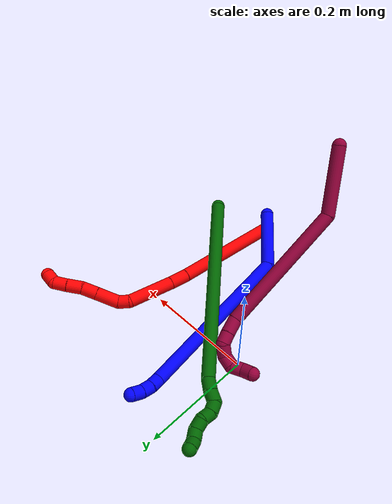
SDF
<sdf version="1.7">
 <world name="default">
  <model name="1">
   <static>0</static>
   <link name="1">
    <collision name="collision-cylinder-e_1_1_4">
     <pose>-0.002907 -0.000421 -0.056557 3.13416 -0.051359 -2.85405</pose>
     <geometry><cylinder><radius>0.0125</radius><length>0.113266</length></cylinder></geometry>
     <surface>
      <friction><ode><mu>1.16</mu><mu2>1.16</mu2><slip1>0</slip1><slip2>0</slip2></ode></friction>
      <contact><ode><kp>1e+06</kp><kd>1</kd><max_vel>0</max_vel><min_depth>0.001</min_depth></ode></contact>
     </surface>
    </collision>
    <visual name="visual-cylinder-e_1_1_4">
     <pose>-0.002907 -0.000421 -0.056557 3.13416 -0.051359 -2.85405</pose>
     <geometry><cylinder><radius>0.0125</radius><length>0.113266</length></cylinder></geometry>
     <material><ambient>0 0 1 1</ambient></material>
    </visual>
    <collision name="collision-cylinder-e_2_4_5">
     <pose>-0.005925 0.103112 -0.238619 -2.44985 -0.000676 0.001877</pose>
     <geometry><cylinder><radius>0.0125</radius><length>0.325933</length></cylinder></geometry>
     <surface>
      <friction><ode><mu>1.16</mu><mu2>1.16</mu2><slip1>0</slip1><slip2>0</slip2></ode></friction>
      <contact><ode><kp>1e+06</kp><kd>1</kd><max_vel>0</max_vel><min_depth>0.001</min_depth></ode></contact>
     </surface>
    </collision>
    <visual name="visual-cylinder-e_2_4_5">
     <pose>-0.005925 0.103112 -0.238619 -2.44985 -0.000676 0.001877</pose>
     <geometry><cylinder><radius>0.0125</radius><length>0.325933</length></cylinder></geometry>
     <material><ambient>0 0 1 1</ambient></material>
    </visual>
    <collision name="collision-cylinder-e_3_5_6">
     <pose>-0.007455 0.213948 -0.371365 -2.38153 -0.141163 0.350352</pose>
     <geometry><cylinder><radius>0.0125</radius><length>0.020178</length></cylinder></geometry>
     <surface>
      <friction><ode><mu>1.16</mu><mu2>1.16</mu2><slip1>0</slip1><slip2>0</slip2></ode></friction>
      <contact><ode><kp>1e+06</kp><kd>1</kd><max_vel>0</max_vel><min_depth>0.001</min_depth></ode></contact>
     </surface>
    </collision>
    <visual name="visual-cylinder-e_3_5_6">
     <pose>-0.007455 0.213948 -0.371365 -2.38153 -0.141163 0.350352</pose>
     <geometry><cylinder><radius>0.0125</radius><length>0.020178</length></cylinder></geometry>
     <material><ambient>0 0 1 1</ambient></material>
    </visual>
    <collision name="collision-cylinder-e_4_6_7">
     <pose>-0.010122 0.229074 -0.384244 -2.17075 -0.124343 0.23493</pose>
     <geometry><cylinder><radius>0.0125</radius><length>0.020132</length></cylinder></geometry>
     <surface>
      <friction><ode><mu>1.16</mu><mu2>1.16</mu2><slip1>0</slip1><slip2>0</slip2></ode></friction>
      <contact><ode><kp>1e+06</kp><kd>1</kd><max_vel>0</max_vel><min_depth>0.001</min_depth></ode></contact>
     </surface>
    </collision>
    <visual name="visual-cylinder-e_4_6_7">
     <pose>-0.010122 0.229074 -0.384244 -2.17075 -0.124343 0.23493</pose>
     <geometry><cylinder><radius>0.0125</radius><length>0.020132</length></cylinder></geometry>
     <material><ambient>0 0 1 1</ambient></material>
    </visual>
    <collision name="collision-cylinder-e_5_7_2">
     <pose>-0.013167 0.246671 -0.39366 -1.95458 -0.176178 0.260338</pose>
     <geometry><cylinder><radius>0.0125</radius><length>0.020491</length></cylinder></geometry>
     <surface>
      <friction><ode><mu>1.16</mu><mu2>1.16</mu2><slip1>0</slip1><slip2>0</slip2></ode></friction>
      <contact><ode><kp>1e+06</kp><kd>1</kd><max_vel>0</max_vel><min_depth>0.001</min_depth></ode></contact>
     </surface>
    </collision>
    <visual name="visual-cylinder-e_5_7_2">
     <pose>-0.013167 0.246671 -0.39366 -1.95458 -0.176178 0.260338</pose>
     <geometry><cylinder><radius>0.0125</radius><length>0.020491</length></cylinder></geometry>
     <material><ambient>0 0 1 1</ambient></material>
    </visual>
    <collision name="collision-sphere-2">
     <pose>-0.014962 0.256024 -0.397437 0 -0 0</pose>
     <geometry><sphere><radius>0.0125</radius></sphere></geometry>
     <surface>
      <friction><ode><mu>1.16</mu><mu2>1.16</mu2><slip1>0</slip1><slip2>0</slip2></ode></friction>
      <contact><ode><kp>1e+06</kp><kd>1</kd><max_vel>0</max_vel><min_depth>0.001</min_depth></ode></contact>
     </surface>
    </collision>
    <visual name="visual-sphere-2">
     <pose>-0.014962 0.256024 -0.397437 0 -0 0</pose>
     <geometry><sphere><radius>0.0125</radius></sphere></geometry>
     <material><ambient>0 0 1 1</ambient></material>
    </visual>
    <collision name="collision-sphere-7">
     <pose>-0.011371 0.237318 -0.389884 0 -0 0</pose>
     <geometry><sphere><radius>0.0125</radius></sphere></geometry>
     <surface>
      <friction><ode><mu>1.16</mu><mu2>1.16</mu2><slip1>0</slip1><slip2>0</slip2></ode></friction>
      <contact><ode><kp>1e+06</kp><kd>1</kd><max_vel>0</max_vel><min_depth>0.001</min_depth></ode></contact>
     </surface>
    </collision>
    <visual name="visual-sphere-7">
     <pose>-0.011371 0.237318 -0.389884 0 -0 0</pose>
     <geometry><sphere><radius>0.0125</radius></sphere></geometry>
     <material><ambient>0 0 1 1</ambient></material>
    </visual>
    <collision name="collision-sphere-6">
     <pose>-0.008874 0.22083 -0.378605 0 -0 0</pose>
     <geometry><sphere><radius>0.0125</radius></sphere></geometry>
     <surface>
      <friction><ode><mu>1.16</mu><mu2>1.16</mu2><slip1>0</slip1><slip2>0</slip2></ode></friction>
      <contact><ode><kp>1e+06</kp><kd>1</kd><max_vel>0</max_vel><min_depth>0.001</min_depth></ode></contact>
     </surface>
    </collision>
    <visual name="visual-sphere-6">
     <pose>-0.008874 0.22083 -0.378605 0 -0 0</pose>
     <geometry><sphere><radius>0.0125</radius></sphere></geometry>
     <material><ambient>0 0 1 1</ambient></material>
    </visual>
    <collision name="collision-sphere-5">
     <pose>-0.006035 0.207066 -0.364125 0 -0 0</pose>
     <geometry><sphere><radius>0.0125</radius></sphere></geometry>
     <surface>
      <friction><ode><mu>1.16</mu><mu2>1.16</mu2><slip1>0</slip1><slip2>0</slip2></ode></friction>
      <contact><ode><kp>1e+06</kp><kd>1</kd><max_vel>0</max_vel><min_depth>0.001</min_depth></ode></contact>
     </surface>
    </collision>
    <visual name="visual-sphere-5">
     <pose>-0.006035 0.207066 -0.364125 0 -0 0</pose>
     <geometry><sphere><radius>0.0125</radius></sphere></geometry>
     <material><ambient>0 0 1 1</ambient></material>
    </visual>
    <collision name="collision-sphere-1">
     <geometry><sphere><radius>0.0125</radius></sphere></geometry>
     <surface>
      <friction><ode><mu>1.16</mu><mu2>1.16</mu2><slip1>0</slip1><slip2>0</slip2></ode></friction>
      <contact><ode><kp>1e+06</kp><kd>1</kd><max_vel>0</max_vel><min_depth>0.001</min_depth></ode></contact>
     </surface>
    </collision>
    <visual name="visual-sphere-1">
     <geometry><sphere><radius>0.0125</radius></sphere></geometry>
     <material><ambient>0 0 1 1</ambient></material>
    </visual>
    <collision name="collision-sphere-4">
     <pose>-0.005815 -0.000841 -0.113113 0 -0 0</pose>
     <geometry><sphere><radius>0.0125</radius></sphere></geometry>
     <surface>
      <friction><ode><mu>1.16</mu><mu2>1.16</mu2><slip1>0</slip1><slip2>0</slip2></ode></friction>
      <contact><ode><kp>1e+06</kp><kd>1</kd><max_vel>0</max_vel><min_depth>0.001</min_depth></ode></contact>
     </surface>
    </collision>
    <visual name="visual-sphere-4">
     <pose>-0.005815 -0.000841 -0.113113 0 -0 0</pose>
     <geometry><sphere><radius>0.0125</radius></sphere></geometry>
     <material><ambient>0 0 1 1</ambient></material>
    </visual>
    <inertial>
     <pose>-0.005769 0.095087 -0.214951 0 -0 0</pose>
     <mass>0.5</mass>
     <inertia>
      <ixx>0.002752</ixx>
      <ixy>0</ixy>
      <ixz>0</ixz>
      <iyy>-0.002123</iyy>
      <iyz>0</iyz>
      <izz>-0.001873</izz>
     </inertia>
    </inertial>
   </link>
   <pose>0.182664 -0.27986 0.042795 0.877884 1.04889 0.107894</pose>
  </model>
  <model name="2">
   <static>0</static>
   <link name="2">
    <collision name="collision-cylinder-e_1_1_4">
     <pose>0.028957 0.095542 0.029969 -1.26684 0.281508 -0.20736</pose>
     <geometry><cylinder><radius>0.0125</radius><length>0.20847</length></cylinder></geometry>
     <surface>
      <friction><ode><mu>1.16</mu><mu2>1.16</mu2><slip1>0</slip1><slip2>0</slip2></ode></friction>
      <contact><ode><kp>1e+06</kp><kd>1</kd><max_vel>0</max_vel><min_depth>0.001</min_depth></ode></contact>
     </surface>
    </collision>
    <visual name="visual-cylinder-e_1_1_4">
     <pose>0.028957 0.095542 0.029969 -1.26684 0.281508 -0.20736</pose>
     <geometry><cylinder><radius>0.0125</radius><length>0.20847</length></cylinder></geometry>
     <material><ambient>1 0 0 1</ambient></material>
    </visual>
    <collision name="collision-cylinder-e_2_4_5">
     <pose>0.061309 0.207305 0.064799 -1.27965 0.197874 -0.147487</pose>
     <geometry><cylinder><radius>0.0125</radius><length>0.034541</length></cylinder></geometry>
     <surface>
      <friction><ode><mu>1.16</mu><mu2>1.16</mu2><slip1>0</slip1><slip2>0</slip2></ode></friction>
      <contact><ode><kp>1e+06</kp><kd>1</kd><max_vel>0</max_vel><min_depth>0.001</min_depth></ode></contact>
     </surface>
    </collision>
    <visual name="visual-cylinder-e_2_4_5">
     <pose>0.061309 0.207305 0.064799 -1.27965 0.197874 -0.147487</pose>
     <geometry><cylinder><radius>0.0125</radius><length>0.034541</length></cylinder></geometry>
     <material><ambient>1 0 0 1</ambient></material>
    </visual>
    <collision name="collision-cylinder-e_3_5_6">
     <pose>0.072048 0.265115 0.081263 -1.29873 0.168467 -0.128029</pose>
     <geometry><cylinder><radius>0.0125</radius><length>0.087596</length></cylinder></geometry>
     <surface>
      <friction><ode><mu>1.16</mu><mu2>1.16</mu2><slip1>0</slip1><slip2>0</slip2></ode></friction>
      <contact><ode><kp>1e+06</kp><kd>1</kd><max_vel>0</max_vel><min_depth>0.001</min_depth></ode></contact>
     </surface>
    </collision>
    <visual name="visual-cylinder-e_3_5_6">
     <pose>0.072048 0.265115 0.081263 -1.29873 0.168467 -0.128029</pose>
     <geometry><cylinder><radius>0.0125</radius><length>0.087596</length></cylinder></geometry>
     <material><ambient>1 0 0 1</ambient></material>
    </visual>
    <collision name="collision-cylinder-e_4_6_7">
     <pose>0.075378 0.31647 0.095901 -1.26939 -0.373999 0.276861</pose>
     <geometry><cylinder><radius>0.0125</radius><length>0.021969</length></cylinder></geometry>
     <surface>
      <friction><ode><mu>1.16</mu><mu2>1.16</mu2><slip1>0</slip1><slip2>0</slip2></ode></friction>
      <contact><ode><kp>1e+06</kp><kd>1</kd><max_vel>0</max_vel><min_depth>0.001</min_depth></ode></contact>
     </surface>
    </collision>
    <visual name="visual-cylinder-e_4_6_7">
     <pose>0.075378 0.31647 0.095901 -1.26939 -0.373999 0.276861</pose>
     <geometry><cylinder><radius>0.0125</radius><length>0.021969</length></cylinder></geometry>
     <material><ambient>1 0 0 1</ambient></material>
    </visual>
    <collision name="collision-cylinder-e_5_7_8">
     <pose>0.060769 0.345094 0.094664 -1.79362 -0.501278 0.620354</pose>
     <geometry><cylinder><radius>0.0125</radius><length>0.044102</length></cylinder></geometry>
     <surface>
      <friction><ode><mu>1.16</mu><mu2>1.16</mu2><slip1>0</slip1><slip2>0</slip2></ode></friction>
      <contact><ode><kp>1e+06</kp><kd>1</kd><max_vel>0</max_vel><min_depth>0.001</min_depth></ode></contact>
     </surface>
    </collision>
    <visual name="visual-cylinder-e_5_7_8">
     <pose>0.060769 0.345094 0.094664 -1.79362 -0.501278 0.620354</pose>
     <geometry><cylinder><radius>0.0125</radius><length>0.044102</length></cylinder></geometry>
     <material><ambient>1 0 0 1</ambient></material>
    </visual>
    <collision name="collision-cylinder-e_6_8_9">
     <pose>0.043485 0.376057 0.087766 -1.78432 -0.495068 0.607382</pose>
     <geometry><cylinder><radius>0.0125</radius><length>0.02815</length></cylinder></geometry>
     <surface>
      <friction><ode><mu>1.16</mu><mu2>1.16</mu2><slip1>0</slip1><slip2>0</slip2></ode></friction>
      <contact><ode><kp>1e+06</kp><kd>1</kd><max_vel>0</max_vel><min_depth>0.001</min_depth></ode></contact>
     </surface>
    </collision>
    <visual name="visual-cylinder-e_6_8_9">
     <pose>0.043485 0.376057 0.087766 -1.78432 -0.495068 0.607382</pose>
     <geometry><cylinder><radius>0.0125</radius><length>0.02815</length></cylinder></geometry>
     <material><ambient>1 0 0 1</ambient></material>
    </visual>
    <collision name="collision-cylinder-e_7_9_10">
     <pose>0.030937 0.401162 0.085182 -1.5677 -0.42361 0.422341</pose>
     <geometry><cylinder><radius>0.0125</radius><length>0.028522</length></cylinder></geometry>
     <surface>
      <friction><ode><mu>1.16</mu><mu2>1.16</mu2><slip1>0</slip1><slip2>0</slip2></ode></friction>
      <contact><ode><kp>1e+06</kp><kd>1</kd><max_vel>0</max_vel><min_depth>0.001</min_depth></ode></contact>
     </surface>
    </collision>
    <visual name="visual-cylinder-e_7_9_10">
     <pose>0.030937 0.401162 0.085182 -1.5677 -0.42361 0.422341</pose>
     <geometry><cylinder><radius>0.0125</radius><length>0.028522</length></cylinder></geometry>
     <material><ambient>1 0 0 1</ambient></material>
    </visual>
    <collision name="collision-cylinder-e_8_10_11">
     <pose>0.019263 0.424979 0.085133 -1.57902 -0.493018 0.496924</pose>
     <geometry><cylinder><radius>0.0125</radius><length>0.024559</length></cylinder></geometry>
     <surface>
      <friction><ode><mu>1.16</mu><mu2>1.16</mu2><slip1>0</slip1><slip2>0</slip2></ode></friction>
      <contact><ode><kp>1e+06</kp><kd>1</kd><max_vel>0</max_vel><min_depth>0.001</min_depth></ode></contact>
     </surface>
    </collision>
    <visual name="visual-cylinder-e_8_10_11">
     <pose>0.019263 0.424979 0.085133 -1.57902 -0.493018 0.496924</pose>
     <geometry><cylinder><radius>0.0125</radius><length>0.024559</length></cylinder></geometry>
     <material><ambient>1 0 0 1</ambient></material>
    </visual>
    <collision name="collision-cylinder-e_9_11_2">
     <pose>0.003183 0.439591 0.083568 -1.94165 -1.19321 1.56357</pose>
     <geometry><cylinder><radius>0.0125</radius><length>0.022091</length></cylinder></geometry>
     <surface>
      <friction><ode><mu>1.16</mu><mu2>1.16</mu2><slip1>0</slip1><slip2>0</slip2></ode></friction>
      <contact><ode><kp>1e+06</kp><kd>1</kd><max_vel>0</max_vel><min_depth>0.001</min_depth></ode></contact>
     </surface>
    </collision>
    <visual name="visual-cylinder-e_9_11_2">
     <pose>0.003183 0.439591 0.083568 -1.94165 -1.19321 1.56357</pose>
     <geometry><cylinder><radius>0.0125</radius><length>0.022091</length></cylinder></geometry>
     <material><ambient>1 0 0 1</ambient></material>
    </visual>
    <collision name="collision-sphere-2">
     <pose>-0.007084 0.443386 0.082092 0 -0 0</pose>
     <geometry><sphere><radius>0.0125</radius></sphere></geometry>
     <surface>
      <friction><ode><mu>1.16</mu><mu2>1.16</mu2><slip1>0</slip1><slip2>0</slip2></ode></friction>
      <contact><ode><kp>1e+06</kp><kd>1</kd><max_vel>0</max_vel><min_depth>0.001</min_depth></ode></contact>
     </surface>
    </collision>
    <visual name="visual-sphere-2">
     <pose>-0.007084 0.443386 0.082092 0 -0 0</pose>
     <geometry><sphere><radius>0.0125</radius></sphere></geometry>
     <material><ambient>1 0 0 1</ambient></material>
    </visual>
    <collision name="collision-sphere-11">
     <pose>0.013451 0.435796 0.085044 0 -0 0</pose>
     <geometry><sphere><radius>0.0125</radius></sphere></geometry>
     <surface>
      <friction><ode><mu>1.16</mu><mu2>1.16</mu2><slip1>0</slip1><slip2>0</slip2></ode></friction>
      <contact><ode><kp>1e+06</kp><kd>1</kd><max_vel>0</max_vel><min_depth>0.001</min_depth></ode></contact>
     </surface>
    </collision>
    <visual name="visual-sphere-11">
     <pose>0.013451 0.435796 0.085044 0 -0 0</pose>
     <geometry><sphere><radius>0.0125</radius></sphere></geometry>
     <material><ambient>1 0 0 1</ambient></material>
    </visual>
    <collision name="collision-sphere-10">
     <pose>0.025074 0.414162 0.085222 0 -0 0</pose>
     <geometry><sphere><radius>0.0125</radius></sphere></geometry>
     <surface>
      <friction><ode><mu>1.16</mu><mu2>1.16</mu2><slip1>0</slip1><slip2>0</slip2></ode></friction>
      <contact><ode><kp>1e+06</kp><kd>1</kd><max_vel>0</max_vel><min_depth>0.001</min_depth></ode></contact>
     </surface>
    </collision>
    <visual name="visual-sphere-10">
     <pose>0.025074 0.414162 0.085222 0 -0 0</pose>
     <geometry><sphere><radius>0.0125</radius></sphere></geometry>
     <material><ambient>1 0 0 1</ambient></material>
    </visual>
    <collision name="collision-sphere-9">
     <pose>0.036799 0.388161 0.085141 0 -0 0</pose>
     <geometry><sphere><radius>0.0125</radius></sphere></geometry>
     <surface>
      <friction><ode><mu>1.16</mu><mu2>1.16</mu2><slip1>0</slip1><slip2>0</slip2></ode></friction>
      <contact><ode><kp>1e+06</kp><kd>1</kd><max_vel>0</max_vel><min_depth>0.001</min_depth></ode></contact>
     </surface>
    </collision>
    <visual name="visual-sphere-9">
     <pose>0.036799 0.388161 0.085141 0 -0 0</pose>
     <geometry><sphere><radius>0.0125</radius></sphere></geometry>
     <material><ambient>1 0 0 1</ambient></material>
    </visual>
    <collision name="collision-sphere-4">
     <pose>0.057914 0.191084 0.059938 0 -0 0</pose>
     <geometry><sphere><radius>0.0125</radius></sphere></geometry>
     <surface>
      <friction><ode><mu>1.16</mu><mu2>1.16</mu2><slip1>0</slip1><slip2>0</slip2></ode></friction>
      <contact><ode><kp>1e+06</kp><kd>1</kd><max_vel>0</max_vel><min_depth>0.001</min_depth></ode></contact>
     </surface>
    </collision>
    <visual name="visual-sphere-4">
     <pose>0.057914 0.191084 0.059938 0 -0 0</pose>
     <geometry><sphere><radius>0.0125</radius></sphere></geometry>
     <material><ambient>1 0 0 1</ambient></material>
    </visual>
    <collision name="collision-sphere-1">
     <geometry><sphere><radius>0.0125</radius></sphere></geometry>
     <surface>
      <friction><ode><mu>1.16</mu><mu2>1.16</mu2><slip1>0</slip1><slip2>0</slip2></ode></friction>
      <contact><ode><kp>1e+06</kp><kd>1</kd><max_vel>0</max_vel><min_depth>0.001</min_depth></ode></contact>
     </surface>
    </collision>
    <visual name="visual-sphere-1">
     <geometry><sphere><radius>0.0125</radius></sphere></geometry>
     <material><ambient>1 0 0 1</ambient></material>
    </visual>
    <collision name="collision-sphere-8">
     <pose>0.050172 0.363954 0.09039 0 -0 0</pose>
     <geometry><sphere><radius>0.0125</radius></sphere></geometry>
     <surface>
      <friction><ode><mu>1.16</mu><mu2>1.16</mu2><slip1>0</slip1><slip2>0</slip2></ode></friction>
      <contact><ode><kp>1e+06</kp><kd>1</kd><max_vel>0</max_vel><min_depth>0.001</min_depth></ode></contact>
     </surface>
    </collision>
    <visual name="visual-sphere-8">
     <pose>0.050172 0.363954 0.09039 0 -0 0</pose>
     <geometry><sphere><radius>0.0125</radius></sphere></geometry>
     <material><ambient>1 0 0 1</ambient></material>
    </visual>
    <collision name="collision-sphere-5">
     <pose>0.064704 0.223525 0.06966 0 -0 0</pose>
     <geometry><sphere><radius>0.0125</radius></sphere></geometry>
     <surface>
      <friction><ode><mu>1.16</mu><mu2>1.16</mu2><slip1>0</slip1><slip2>0</slip2></ode></friction>
      <contact><ode><kp>1e+06</kp><kd>1</kd><max_vel>0</max_vel><min_depth>0.001</min_depth></ode></contact>
     </surface>
    </collision>
    <visual name="visual-sphere-5">
     <pose>0.064704 0.223525 0.06966 0 -0 0</pose>
     <geometry><sphere><radius>0.0125</radius></sphere></geometry>
     <material><ambient>1 0 0 1</ambient></material>
    </visual>
    <collision name="collision-sphere-6">
     <pose>0.079391 0.306705 0.092866 0 -0 0</pose>
     <geometry><sphere><radius>0.0125</radius></sphere></geometry>
     <surface>
      <friction><ode><mu>1.16</mu><mu2>1.16</mu2><slip1>0</slip1><slip2>0</slip2></ode></friction>
      <contact><ode><kp>1e+06</kp><kd>1</kd><max_vel>0</max_vel><min_depth>0.001</min_depth></ode></contact>
     </surface>
    </collision>
    <visual name="visual-sphere-6">
     <pose>0.079391 0.306705 0.092866 0 -0 0</pose>
     <geometry><sphere><radius>0.0125</radius></sphere></geometry>
     <material><ambient>1 0 0 1</ambient></material>
    </visual>
    <collision name="collision-sphere-7">
     <pose>0.071365 0.326234 0.098937 0 -0 0</pose>
     <geometry><sphere><radius>0.0125</radius></sphere></geometry>
     <surface>
      <friction><ode><mu>1.16</mu><mu2>1.16</mu2><slip1>0</slip1><slip2>0</slip2></ode></friction>
      <contact><ode><kp>1e+06</kp><kd>1</kd><max_vel>0</max_vel><min_depth>0.001</min_depth></ode></contact>
     </surface>
    </collision>
    <visual name="visual-sphere-7">
     <pose>0.071365 0.326234 0.098937 0 -0 0</pose>
     <geometry><sphere><radius>0.0125</radius></sphere></geometry>
     <material><ambient>1 0 0 1</ambient></material>
    </visual>
    <inertial>
     <pose>0.042903 0.229298 0.061446 0 -0 0</pose>
     <mass>0.5</mass>
     <inertia>
      <ixx>0.000644</ixx>
      <ixy>0</ixy>
      <ixz>0</ixz>
      <iyy>0.000173</iyy>
      <iyz>0</iyz>
      <izz>-0.000984</izz>
     </inertia>
    </inertial>
   </link>
   <pose>0.175414 -0.275821 0.011491 2.88485 -0.182541 2.72829</pose>
  </model>
  <model name="6">
   <static>0</static>
   <link name="6">
    <collision name="collision-cylinder-e_1_1_4">
     <pose>-0.143935 0.082236 0.065556 -0.897783 -0.939782 0.479809</pose>
     <geometry><cylinder><radius>0.0125</radius><length>0.356526</length></cylinder></geometry>
     <surface>
      <friction><ode><mu>1.16</mu><mu2>1.16</mu2><slip1>0</slip1><slip2>0</slip2></ode></friction>
      <contact><ode><kp>1e+06</kp><kd>1</kd><max_vel>0</max_vel><min_depth>0.001</min_depth></ode></contact>
     </surface>
    </collision>
    <visual name="visual-cylinder-e_1_1_4">
     <pose>-0.143935 0.082236 0.065556 -0.897783 -0.939782 0.479809</pose>
     <geometry><cylinder><radius>0.0125</radius><length>0.356526</length></cylinder></geometry>
     <material><ambient>0 0.392157 0.003922 1</ambient></material>
    </visual>
    <collision name="collision-cylinder-e_2_4_5">
     <pose>-0.295285 0.171382 0.136091 -0.9464 -0.716436 0.37876</pose>
     <geometry><cylinder><radius>0.0125</radius><length>0.022584</length></cylinder></geometry>
     <surface>
      <friction><ode><mu>1.16</mu><mu2>1.16</mu2><slip1>0</slip1><slip2>0</slip2></ode></friction>
      <contact><ode><kp>1e+06</kp><kd>1</kd><max_vel>0</max_vel><min_depth>0.001</min_depth></ode></contact>
     </surface>
    </collision>
    <visual name="visual-cylinder-e_2_4_5">
     <pose>-0.295285 0.171382 0.136091 -0.9464 -0.716436 0.37876</pose>
     <geometry><cylinder><radius>0.0125</radius><length>0.022584</length></cylinder></geometry>
     <material><ambient>0 0.392157 0.003922 1</ambient></material>
    </visual>
    <collision name="collision-cylinder-e_3_5_6">
     <pose>-0.307857 0.184276 0.147273 -0.767522 -0.539125 0.2222</pose>
     <geometry><cylinder><radius>0.0125</radius><length>0.020089</length></cylinder></geometry>
     <surface>
      <friction><ode><mu>1.16</mu><mu2>1.16</mu2><slip1>0</slip1><slip2>0</slip2></ode></friction>
      <contact><ode><kp>1e+06</kp><kd>1</kd><max_vel>0</max_vel><min_depth>0.001</min_depth></ode></contact>
     </surface>
    </collision>
    <visual name="visual-cylinder-e_3_5_6">
     <pose>-0.307857 0.184276 0.147273 -0.767522 -0.539125 0.2222</pose>
     <geometry><cylinder><radius>0.0125</radius><length>0.020089</length></cylinder></geometry>
     <material><ambient>0 0.392157 0.003922 1</ambient></material>
    </visual>
    <collision name="collision-cylinder-e_4_6_7">
     <pose>-0.322391 0.193716 0.154734 -1.22155 -1.19707 0.890874</pose>
     <geometry><cylinder><radius>0.0125</radius><length>0.020145</length></cylinder></geometry>
     <surface>
      <friction><ode><mu>1.16</mu><mu2>1.16</mu2><slip1>0</slip1><slip2>0</slip2></ode></friction>
      <contact><ode><kp>1e+06</kp><kd>1</kd><max_vel>0</max_vel><min_depth>0.001</min_depth></ode></contact>
     </surface>
    </collision>
    <visual name="visual-cylinder-e_4_6_7">
     <pose>-0.322391 0.193716 0.154734 -1.22155 -1.19707 0.890874</pose>
     <geometry><cylinder><radius>0.0125</radius><length>0.020145</length></cylinder></geometry>
     <material><ambient>0 0.392157 0.003922 1</ambient></material>
    </visual>
    <collision name="collision-cylinder-e_5_7_8">
     <pose>-0.340964 0.198511 0.152277 -2.79568 -1.16519 2.62322</pose>
     <geometry><cylinder><radius>0.0125</radius><length>0.020015</length></cylinder></geometry>
     <surface>
      <friction><ode><mu>1.16</mu><mu2>1.16</mu2><slip1>0</slip1><slip2>0</slip2></ode></friction>
      <contact><ode><kp>1e+06</kp><kd>1</kd><max_vel>0</max_vel><min_depth>0.001</min_depth></ode></contact>
     </surface>
    </collision>
    <visual name="visual-cylinder-e_5_7_8">
     <pose>-0.340964 0.198511 0.152277 -2.79568 -1.16519 2.62322</pose>
     <geometry><cylinder><radius>0.0125</radius><length>0.020015</length></cylinder></geometry>
     <material><ambient>0 0.392157 0.003922 1</ambient></material>
    </visual>
    <collision name="collision-cylinder-e_6_8_9">
     <pose>-0.360115 0.200685 0.149737 -0.618289 -1.42701 0.539469</pose>
     <geometry><cylinder><radius>0.0125</radius><length>0.020119</length></cylinder></geometry>
     <surface>
      <friction><ode><mu>1.16</mu><mu2>1.16</mu2><slip1>0</slip1><slip2>0</slip2></ode></friction>
      <contact><ode><kp>1e+06</kp><kd>1</kd><max_vel>0</max_vel><min_depth>0.001</min_depth></ode></contact>
     </surface>
    </collision>
    <visual name="visual-cylinder-e_6_8_9">
     <pose>-0.360115 0.200685 0.149737 -0.618289 -1.42701 0.539469</pose>
     <geometry><cylinder><radius>0.0125</radius><length>0.020119</length></cylinder></geometry>
     <material><ambient>0 0.392157 0.003922 1</ambient></material>
    </visual>
    <collision name="collision-cylinder-e_7_9_10">
     <pose>-0.378578 0.206992 0.152429 -1.30026 -0.982261 0.772536</pose>
     <geometry><cylinder><radius>0.0125</radius><length>0.020456</length></cylinder></geometry>
     <surface>
      <friction><ode><mu>1.16</mu><mu2>1.16</mu2><slip1>0</slip1><slip2>0</slip2></ode></friction>
      <contact><ode><kp>1e+06</kp><kd>1</kd><max_vel>0</max_vel><min_depth>0.001</min_depth></ode></contact>
     </surface>
    </collision>
    <visual name="visual-cylinder-e_7_9_10">
     <pose>-0.378578 0.206992 0.152429 -1.30026 -0.982261 0.772536</pose>
     <geometry><cylinder><radius>0.0125</radius><length>0.020456</length></cylinder></geometry>
     <material><ambient>0 0.392157 0.003922 1</ambient></material>
    </visual>
    <collision name="collision-cylinder-e_8_10_2">
     <pose>-0.394419 0.218587 0.150883 -2.03469 -0.819644 1.2256</pose>
     <geometry><cylinder><radius>0.0125</radius><length>0.020066</length></cylinder></geometry>
     <surface>
      <friction><ode><mu>1.16</mu><mu2>1.16</mu2><slip1>0</slip1><slip2>0</slip2></ode></friction>
      <contact><ode><kp>1e+06</kp><kd>1</kd><max_vel>0</max_vel><min_depth>0.001</min_depth></ode></contact>
     </surface>
    </collision>
    <visual name="visual-cylinder-e_8_10_2">
     <pose>-0.394419 0.218587 0.150883 -2.03469 -0.819644 1.2256</pose>
     <geometry><cylinder><radius>0.0125</radius><length>0.020066</length></cylinder></geometry>
     <material><ambient>0 0.392157 0.003922 1</ambient></material>
    </visual>
    <collision name="collision-sphere-2">
     <pose>-0.401752 0.224711 0.147819 0 -0 0</pose>
     <geometry><sphere><radius>0.0125</radius></sphere></geometry>
     <surface>
      <friction><ode><mu>1.16</mu><mu2>1.16</mu2><slip1>0</slip1><slip2>0</slip2></ode></friction>
      <contact><ode><kp>1e+06</kp><kd>1</kd><max_vel>0</max_vel><min_depth>0.001</min_depth></ode></contact>
     </surface>
    </collision>
    <visual name="visual-sphere-2">
     <pose>-0.401752 0.224711 0.147819 0 -0 0</pose>
     <geometry><sphere><radius>0.0125</radius></sphere></geometry>
     <material><ambient>0 0.392157 0.003922 1</ambient></material>
    </visual>
    <collision name="collision-sphere-10">
     <pose>-0.387085 0.212464 0.153947 0 -0 0</pose>
     <geometry><sphere><radius>0.0125</radius></sphere></geometry>
     <surface>
      <friction><ode><mu>1.16</mu><mu2>1.16</mu2><slip1>0</slip1><slip2>0</slip2></ode></friction>
      <contact><ode><kp>1e+06</kp><kd>1</kd><max_vel>0</max_vel><min_depth>0.001</min_depth></ode></contact>
     </surface>
    </collision>
    <visual name="visual-sphere-10">
     <pose>-0.387085 0.212464 0.153947 0 -0 0</pose>
     <geometry><sphere><radius>0.0125</radius></sphere></geometry>
     <material><ambient>0 0.392157 0.003922 1</ambient></material>
    </visual>
    <collision name="collision-sphere-9">
     <pose>-0.370071 0.201521 0.150912 0 -0 0</pose>
     <geometry><sphere><radius>0.0125</radius></sphere></geometry>
     <surface>
      <friction><ode><mu>1.16</mu><mu2>1.16</mu2><slip1>0</slip1><slip2>0</slip2></ode></friction>
      <contact><ode><kp>1e+06</kp><kd>1</kd><max_vel>0</max_vel><min_depth>0.001</min_depth></ode></contact>
     </surface>
    </collision>
    <visual name="visual-sphere-9">
     <pose>-0.370071 0.201521 0.150912 0 -0 0</pose>
     <geometry><sphere><radius>0.0125</radius></sphere></geometry>
     <material><ambient>0 0.392157 0.003922 1</ambient></material>
    </visual>
    <collision name="collision-sphere-4">
     <pose>-0.28787 0.164473 0.131113 0 -0 0</pose>
     <geometry><sphere><radius>0.0125</radius></sphere></geometry>
     <surface>
      <friction><ode><mu>1.16</mu><mu2>1.16</mu2><slip1>0</slip1><slip2>0</slip2></ode></friction>
      <contact><ode><kp>1e+06</kp><kd>1</kd><max_vel>0</max_vel><min_depth>0.001</min_depth></ode></contact>
     </surface>
    </collision>
    <visual name="visual-sphere-4">
     <pose>-0.28787 0.164473 0.131113 0 -0 0</pose>
     <geometry><sphere><radius>0.0125</radius></sphere></geometry>
     <material><ambient>0 0.392157 0.003922 1</ambient></material>
    </visual>
    <collision name="collision-sphere-1">
     <geometry><sphere><radius>0.0125</radius></sphere></geometry>
     <surface>
      <friction><ode><mu>1.16</mu><mu2>1.16</mu2><slip1>0</slip1><slip2>0</slip2></ode></friction>
      <contact><ode><kp>1e+06</kp><kd>1</kd><max_vel>0</max_vel><min_depth>0.001</min_depth></ode></contact>
     </surface>
    </collision>
    <visual name="visual-sphere-1">
     <geometry><sphere><radius>0.0125</radius></sphere></geometry>
     <material><ambient>0 0.392157 0.003922 1</ambient></material>
    </visual>
    <collision name="collision-sphere-8">
     <pose>-0.35016 0.199849 0.148563 0 -0 0</pose>
     <geometry><sphere><radius>0.0125</radius></sphere></geometry>
     <surface>
      <friction><ode><mu>1.16</mu><mu2>1.16</mu2><slip1>0</slip1><slip2>0</slip2></ode></friction>
      <contact><ode><kp>1e+06</kp><kd>1</kd><max_vel>0</max_vel><min_depth>0.001</min_depth></ode></contact>
     </surface>
    </collision>
    <visual name="visual-sphere-8">
     <pose>-0.35016 0.199849 0.148563 0 -0 0</pose>
     <geometry><sphere><radius>0.0125</radius></sphere></geometry>
     <material><ambient>0 0.392157 0.003922 1</ambient></material>
    </visual>
    <collision name="collision-sphere-5">
     <pose>-0.302701 0.178291 0.14107 0 -0 0</pose>
     <geometry><sphere><radius>0.0125</radius></sphere></geometry>
     <surface>
      <friction><ode><mu>1.16</mu><mu2>1.16</mu2><slip1>0</slip1><slip2>0</slip2></ode></friction>
      <contact><ode><kp>1e+06</kp><kd>1</kd><max_vel>0</max_vel><min_depth>0.001</min_depth></ode></contact>
     </surface>
    </collision>
    <visual name="visual-sphere-5">
     <pose>-0.302701 0.178291 0.14107 0 -0 0</pose>
     <geometry><sphere><radius>0.0125</radius></sphere></geometry>
     <material><ambient>0 0.392157 0.003922 1</ambient></material>
    </visual>
    <collision name="collision-sphere-6">
     <pose>-0.313014 0.190261 0.153476 0 -0 0</pose>
     <geometry><sphere><radius>0.0125</radius></sphere></geometry>
     <surface>
      <friction><ode><mu>1.16</mu><mu2>1.16</mu2><slip1>0</slip1><slip2>0</slip2></ode></friction>
      <contact><ode><kp>1e+06</kp><kd>1</kd><max_vel>0</max_vel><min_depth>0.001</min_depth></ode></contact>
     </surface>
    </collision>
    <visual name="visual-sphere-6">
     <pose>-0.313014 0.190261 0.153476 0 -0 0</pose>
     <geometry><sphere><radius>0.0125</radius></sphere></geometry>
     <material><ambient>0 0.392157 0.003922 1</ambient></material>
    </visual>
    <collision name="collision-sphere-7">
     <pose>-0.331769 0.197172 0.155992 0 -0 0</pose>
     <geometry><sphere><radius>0.0125</radius></sphere></geometry>
     <surface>
      <friction><ode><mu>1.16</mu><mu2>1.16</mu2><slip1>0</slip1><slip2>0</slip2></ode></friction>
      <contact><ode><kp>1e+06</kp><kd>1</kd><max_vel>0</max_vel><min_depth>0.001</min_depth></ode></contact>
     </surface>
    </collision>
    <visual name="visual-sphere-7">
     <pose>-0.331769 0.197172 0.155992 0 -0 0</pose>
     <geometry><sphere><radius>0.0125</radius></sphere></geometry>
     <material><ambient>0 0.392157 0.003922 1</ambient></material>
    </visual>
    <inertial>
     <pose>-0.200785 0.114851 0.089456 0 -0 0</pose>
     <mass>0.5</mass>
     <inertia>
      <ixx>0.002991</ixx>
      <ixy>0</ixy>
      <ixz>0</ixz>
      <iyy>0.004262</iyy>
      <iyz>0</iyz>
      <izz>0.001327</izz>
     </inertia>
    </inertial>
   </link>
   <pose>0.24225 -0.19713 0.081548 2.49014 -0.195163 -1.48599</pose>
  </model>
  <model name="8">
   <static>0</static>
   <link name="8">
    <collision name="collision-cylinder-e_1_1_4">
     <pose>-0.009739 -0.0026 -0.059706 3.09808 -0.16154 -2.61637</pose>
     <geometry><cylinder><radius>0.0125</radius><length>0.121102</length></cylinder></geometry>
     <surface>
      <friction><ode><mu>1.16</mu><mu2>1.16</mu2><slip1>0</slip1><slip2>0</slip2></ode></friction>
      <contact><ode><kp>1e+06</kp><kd>1</kd><max_vel>0</max_vel><min_depth>0.001</min_depth></ode></contact>
     </surface>
    </collision>
    <visual name="visual-cylinder-e_1_1_4">
     <pose>-0.009739 -0.0026 -0.059706 3.09808 -0.16154 -2.61637</pose>
     <geometry><cylinder><radius>0.0125</radius><length>0.121102</length></cylinder></geometry>
     <material><ambient>0.584314 0 0.227451 1</ambient></material>
    </visual>
    <collision name="collision-cylinder-e_2_4_5">
     <pose>-0.008523 0.057948 -0.222696 -2.59284 0.09025 -0.318135</pose>
     <geometry><cylinder><radius>0.0125</radius><length>0.243105</length></cylinder></geometry>
     <surface>
      <friction><ode><mu>1.16</mu><mu2>1.16</mu2><slip1>0</slip1><slip2>0</slip2></ode></friction>
      <contact><ode><kp>1e+06</kp><kd>1</kd><max_vel>0</max_vel><min_depth>0.001</min_depth></ode></contact>
     </surface>
    </collision>
    <visual name="visual-cylinder-e_2_4_5">
     <pose>-0.008523 0.057948 -0.222696 -2.59284 0.09025 -0.318135</pose>
     <geometry><cylinder><radius>0.0125</radius><length>0.243105</length></cylinder></geometry>
     <material><ambient>0.584314 0 0.227451 1</ambient></material>
    </visual>
    <collision name="collision-cylinder-e_3_5_6">
     <pose>-0.000304 0.12807 -0.337874 -2.6112 -0.195877 0.694232</pose>
     <geometry><cylinder><radius>0.0125</radius><length>0.028116</length></cylinder></geometry>
     <surface>
      <friction><ode><mu>1.16</mu><mu2>1.16</mu2><slip1>0</slip1><slip2>0</slip2></ode></friction>
      <contact><ode><kp>1e+06</kp><kd>1</kd><max_vel>0</max_vel><min_depth>0.001</min_depth></ode></contact>
     </surface>
    </collision>
    <visual name="visual-cylinder-e_3_5_6">
     <pose>-0.000304 0.12807 -0.337874 -2.6112 -0.195877 0.694232</pose>
     <geometry><cylinder><radius>0.0125</radius><length>0.028116</length></cylinder></geometry>
     <material><ambient>0.584314 0 0.227451 1</ambient></material>
    </visual>
    <collision name="collision-cylinder-e_4_6_7">
     <pose>-0.005446 0.139544 -0.358518 -2.66672 -0.239922 0.924245</pose>
     <geometry><cylinder><radius>0.0125</radius><length>0.020256</length></cylinder></geometry>
     <surface>
      <friction><ode><mu>1.16</mu><mu2>1.16</mu2><slip1>0</slip1><slip2>0</slip2></ode></friction>
      <contact><ode><kp>1e+06</kp><kd>1</kd><max_vel>0</max_vel><min_depth>0.001</min_depth></ode></contact>
     </surface>
    </collision>
    <visual name="visual-cylinder-e_4_6_7">
     <pose>-0.005446 0.139544 -0.358518 -2.66672 -0.239922 0.924245</pose>
     <geometry><cylinder><radius>0.0125</radius><length>0.020256</length></cylinder></geometry>
     <material><ambient>0.584314 0 0.227451 1</ambient></material>
    </visual>
    <collision name="collision-cylinder-e_5_7_8">
     <pose>-0.010684 0.140719 -0.378138 2.84493 -0.244119 -1.37473</pose>
     <geometry><cylinder><radius>0.0125</radius><length>0.023429</length></cylinder></geometry>
     <surface>
      <friction><ode><mu>1.16</mu><mu2>1.16</mu2><slip1>0</slip1><slip2>0</slip2></ode></friction>
      <contact><ode><kp>1e+06</kp><kd>1</kd><max_vel>0</max_vel><min_depth>0.001</min_depth></ode></contact>
     </surface>
    </collision>
    <visual name="visual-cylinder-e_5_7_8">
     <pose>-0.010684 0.140719 -0.378138 2.84493 -0.244119 -1.37473</pose>
     <geometry><cylinder><radius>0.0125</radius><length>0.023429</length></cylinder></geometry>
     <material><ambient>0.584314 0 0.227451 1</ambient></material>
    </visual>
    <collision name="collision-cylinder-e_6_8_9">
     <pose>-0.022404 0.13498 -0.394505 2.72746 -0.976702 -2.38848</pose>
     <geometry><cylinder><radius>0.0125</radius><length>0.021452</length></cylinder></geometry>
     <surface>
      <friction><ode><mu>1.16</mu><mu2>1.16</mu2><slip1>0</slip1><slip2>0</slip2></ode></friction>
      <contact><ode><kp>1e+06</kp><kd>1</kd><max_vel>0</max_vel><min_depth>0.001</min_depth></ode></contact>
     </surface>
    </collision>
    <visual name="visual-cylinder-e_6_8_9">
     <pose>-0.022404 0.13498 -0.394505 2.72746 -0.976702 -2.38848</pose>
     <geometry><cylinder><radius>0.0125</radius><length>0.021452</length></cylinder></geometry>
     <material><ambient>0.584314 0 0.227451 1</ambient></material>
    </visual>
    <collision name="collision-cylinder-e_7_9_10">
     <pose>-0.03952 0.126268 -0.399699 1.52289 -0.917115 -0.879631</pose>
     <geometry><cylinder><radius>0.0125</radius><length>0.020731</length></cylinder></geometry>
     <surface>
      <friction><ode><mu>1.16</mu><mu2>1.16</mu2><slip1>0</slip1><slip2>0</slip2></ode></friction>
      <contact><ode><kp>1e+06</kp><kd>1</kd><max_vel>0</max_vel><min_depth>0.001</min_depth></ode></contact>
     </surface>
    </collision>
    <visual name="visual-cylinder-e_7_9_10">
     <pose>-0.03952 0.126268 -0.399699 1.52289 -0.917115 -0.879631</pose>
     <geometry><cylinder><radius>0.0125</radius><length>0.020731</length></cylinder></geometry>
     <material><ambient>0.584314 0 0.227451 1</ambient></material>
    </visual>
    <collision name="collision-cylinder-e_8_10_2">
     <pose>-0.058427 0.118623 -0.397646 0.655967 -1.36669 -0.540552</pose>
     <geometry><cylinder><radius>0.0125</radius><length>0.021809</length></cylinder></geometry>
     <surface>
      <friction><ode><mu>1.16</mu><mu2>1.16</mu2><slip1>0</slip1><slip2>0</slip2></ode></friction>
      <contact><ode><kp>1e+06</kp><kd>1</kd><max_vel>0</max_vel><min_depth>0.001</min_depth></ode></contact>
     </surface>
    </collision>
    <visual name="visual-cylinder-e_8_10_2">
     <pose>-0.058427 0.118623 -0.397646 0.655967 -1.36669 -0.540552</pose>
     <geometry><cylinder><radius>0.0125</radius><length>0.021809</length></cylinder></geometry>
     <material><ambient>0.584314 0 0.227451 1</ambient></material>
    </visual>
    <collision name="collision-sphere-2">
     <pose>-0.069106 0.117275 -0.395894 0 -0 0</pose>
     <geometry><sphere><radius>0.0125</radius></sphere></geometry>
     <surface>
      <friction><ode><mu>1.16</mu><mu2>1.16</mu2><slip1>0</slip1><slip2>0</slip2></ode></friction>
      <contact><ode><kp>1e+06</kp><kd>1</kd><max_vel>0</max_vel><min_depth>0.001</min_depth></ode></contact>
     </surface>
    </collision>
    <visual name="visual-sphere-2">
     <pose>-0.069106 0.117275 -0.395894 0 -0 0</pose>
     <geometry><sphere><radius>0.0125</radius></sphere></geometry>
     <material><ambient>0.584314 0 0.227451 1</ambient></material>
    </visual>
    <collision name="collision-sphere-10">
     <pose>-0.047749 0.119971 -0.399397 0 -0 0</pose>
     <geometry><sphere><radius>0.0125</radius></sphere></geometry>
     <surface>
      <friction><ode><mu>1.16</mu><mu2>1.16</mu2><slip1>0</slip1><slip2>0</slip2></ode></friction>
      <contact><ode><kp>1e+06</kp><kd>1</kd><max_vel>0</max_vel><min_depth>0.001</min_depth></ode></contact>
     </surface>
    </collision>
    <visual name="visual-sphere-10">
     <pose>-0.047749 0.119971 -0.399397 0 -0 0</pose>
     <geometry><sphere><radius>0.0125</radius></sphere></geometry>
     <material><ambient>0.584314 0 0.227451 1</ambient></material>
    </visual>
    <collision name="collision-sphere-9">
     <pose>-0.031292 0.132564 -0.400001 0 -0 0</pose>
     <geometry><sphere><radius>0.0125</radius></sphere></geometry>
     <surface>
      <friction><ode><mu>1.16</mu><mu2>1.16</mu2><slip1>0</slip1><slip2>0</slip2></ode></friction>
      <contact><ode><kp>1e+06</kp><kd>1</kd><max_vel>0</max_vel><min_depth>0.001</min_depth></ode></contact>
     </surface>
    </collision>
    <visual name="visual-sphere-9">
     <pose>-0.031292 0.132564 -0.400001 0 -0 0</pose>
     <geometry><sphere><radius>0.0125</radius></sphere></geometry>
     <material><ambient>0.584314 0 0.227451 1</ambient></material>
    </visual>
    <collision name="collision-sphere-4">
     <pose>-0.019478 -0.005199 -0.119413 0 -0 0</pose>
     <geometry><sphere><radius>0.0125</radius></sphere></geometry>
     <surface>
      <friction><ode><mu>1.16</mu><mu2>1.16</mu2><slip1>0</slip1><slip2>0</slip2></ode></friction>
      <contact><ode><kp>1e+06</kp><kd>1</kd><max_vel>0</max_vel><min_depth>0.001</min_depth></ode></contact>
     </surface>
    </collision>
    <visual name="visual-sphere-4">
     <pose>-0.019478 -0.005199 -0.119413 0 -0 0</pose>
     <geometry><sphere><radius>0.0125</radius></sphere></geometry>
     <material><ambient>0.584314 0 0.227451 1</ambient></material>
    </visual>
    <collision name="collision-sphere-1">
     <geometry><sphere><radius>0.0125</radius></sphere></geometry>
     <surface>
      <friction><ode><mu>1.16</mu><mu2>1.16</mu2><slip1>0</slip1><slip2>0</slip2></ode></friction>
      <contact><ode><kp>1e+06</kp><kd>1</kd><max_vel>0</max_vel><min_depth>0.001</min_depth></ode></contact>
     </surface>
    </collision>
    <visual name="visual-sphere-1">
     <geometry><sphere><radius>0.0125</radius></sphere></geometry>
     <material><ambient>0.584314 0 0.227451 1</ambient></material>
    </visual>
    <collision name="collision-sphere-8">
     <pose>-0.013516 0.137396 -0.389008 0 -0 0</pose>
     <geometry><sphere><radius>0.0125</radius></sphere></geometry>
     <surface>
      <friction><ode><mu>1.16</mu><mu2>1.16</mu2><slip1>0</slip1><slip2>0</slip2></ode></friction>
      <contact><ode><kp>1e+06</kp><kd>1</kd><max_vel>0</max_vel><min_depth>0.001</min_depth></ode></contact>
     </surface>
    </collision>
    <visual name="visual-sphere-8">
     <pose>-0.013516 0.137396 -0.389008 0 -0 0</pose>
     <geometry><sphere><radius>0.0125</radius></sphere></geometry>
     <material><ambient>0.584314 0 0.227451 1</ambient></material>
    </visual>
    <collision name="collision-sphere-5">
     <pose>0.002432 0.121095 -0.325979 0 -0 0</pose>
     <geometry><sphere><radius>0.0125</radius></sphere></geometry>
     <surface>
      <friction><ode><mu>1.16</mu><mu2>1.16</mu2><slip1>0</slip1><slip2>0</slip2></ode></friction>
      <contact><ode><kp>1e+06</kp><kd>1</kd><max_vel>0</max_vel><min_depth>0.001</min_depth></ode></contact>
     </surface>
    </collision>
    <visual name="visual-sphere-5">
     <pose>0.002432 0.121095 -0.325979 0 -0 0</pose>
     <geometry><sphere><radius>0.0125</radius></sphere></geometry>
     <material><ambient>0.584314 0 0.227451 1</ambient></material>
    </visual>
    <collision name="collision-sphere-6">
     <pose>-0.00304 0.135046 -0.349768 0 -0 0</pose>
     <geometry><sphere><radius>0.0125</radius></sphere></geometry>
     <surface>
      <friction><ode><mu>1.16</mu><mu2>1.16</mu2><slip1>0</slip1><slip2>0</slip2></ode></friction>
      <contact><ode><kp>1e+06</kp><kd>1</kd><max_vel>0</max_vel><min_depth>0.001</min_depth></ode></contact>
     </surface>
    </collision>
    <visual name="visual-sphere-6">
     <pose>-0.00304 0.135046 -0.349768 0 -0 0</pose>
     <geometry><sphere><radius>0.0125</radius></sphere></geometry>
     <material><ambient>0.584314 0 0.227451 1</ambient></material>
    </visual>
    <collision name="collision-sphere-7">
     <pose>-0.007853 0.144042 -0.367267 0 -0 0</pose>
     <geometry><sphere><radius>0.0125</radius></sphere></geometry>
     <surface>
      <friction><ode><mu>1.16</mu><mu2>1.16</mu2><slip1>0</slip1><slip2>0</slip2></ode></friction>
      <contact><ode><kp>1e+06</kp><kd>1</kd><max_vel>0</max_vel><min_depth>0.001</min_depth></ode></contact>
     </surface>
    </collision>
    <visual name="visual-sphere-7">
     <pose>-0.007853 0.144042 -0.367267 0 -0 0</pose>
     <geometry><sphere><radius>0.0125</radius></sphere></geometry>
     <material><ambient>0.584314 0 0.227451 1</ambient></material>
    </visual>
    <inertial>
     <pose>-0.012389 0.063194 -0.224823 0 -0 0</pose>
     <mass>0.5</mass>
     <inertia>
      <ixx>0.000557</ixx>
      <ixy>0</ixy>
      <ixz>0</ixz>
      <iyy>-0.001269</iyy>
      <iyz>0</iyz>
      <izz>-0.00073</izz>
     </inertia>
    </inertial>
   </link>
   <pose>0.081085 -0.32243 0.25423 0.581628 0.348279 -0.107875</pose>
  </model>
 </world>
</sdf>
